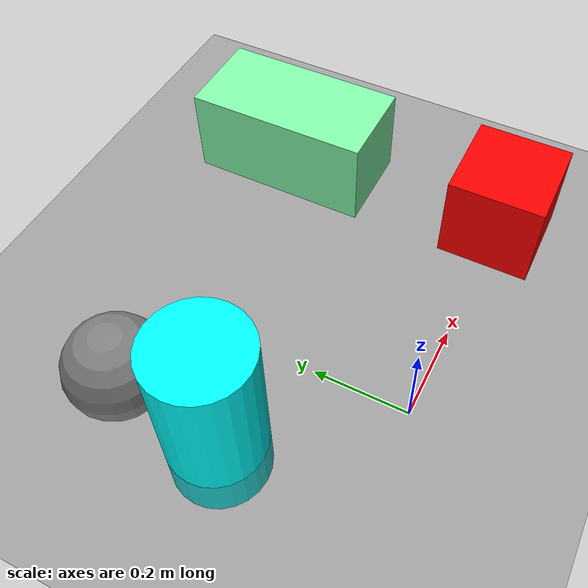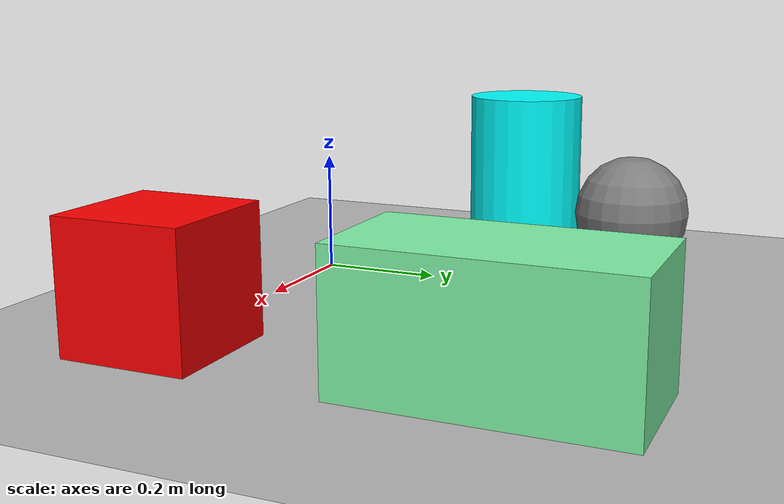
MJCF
<mujoco>
   <asset>
      <texture file="../textures/checkerboard.png" type="cube" name="checker" />
      <texture file="../textures/sphere.png" type="2d" name="checker-sph" />

      <texture name="builtin_checker" builtin="checker" type="2d" rgb1="1 1 0" rgb2="0 0 1" width="200" height="200"/>
      <texture name="builtin_gradient" builtin="gradient" rgb1="0 .9 .3" rgb2="1 1 1" width="200" height="200"/>
      <texture name="builtin_flat" builtin="flat" rgb1="1 0 0" rgb2="1 0 0"  width="200" height="200"/>

      <material name="checker_mat" reflectance="0.9" texrepeat="3 3" texture="builtin_checker" texuniform="false" />
      <material name="gradient_mat" reflectance="1" texrepeat="1 1" texture="builtin_gradient" texuniform="true"/>
      <material name="flat_mat" reflectance="1" texrepeat="1 1" texture="builtin_flat" texuniform="true"/>
   </asset>

   <worldbody>
      <light diffuse=".9 .9 .9" pos="0 0 3" dir="0 0 -1"/>
      <geom type="plane" size="1 1 0.1" rgba="0.3 0.3 0.3 1"/>
     <body pos="0.5 0 0.1">
         <joint type="free"/>
         <geom type="box" size=".1 .1 .1" material="checker_mat" rgba="1 0 0 1"/>
      </body>
      <body pos="0.5 0.5 0.1">
         <joint type="free"/>
         <geom type="box" size=".1 .2 .1" material="gradient_mat"/>
      </body>
      <body pos="-0.2 0.3 0.1">
         <joint type="free"/>
         <geom type="cylinder" size=".1 .2 .1" material="checker_mat" rgba="0 1 1 1" />
      </body>
    <body pos="-0.2 0.5 0.1">
         <joint type="free"/>
         <geom type="sphere" size="0.1 0.1 .1" material="checker_mat" />
      </body>
        <camera axisangle="1 0 0 1" fovy="60" name="camera_a" pos="0.3 0.3 2"></camera>
   </worldbody>
</mujoco>
